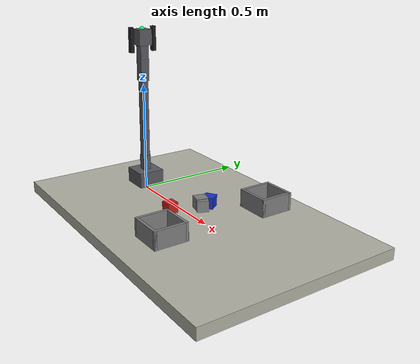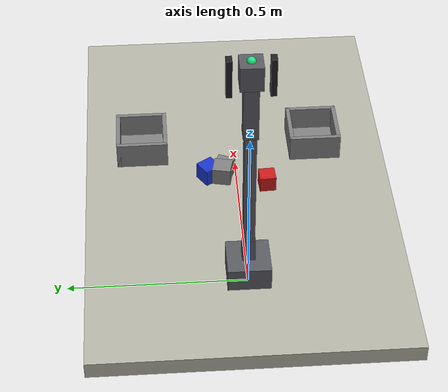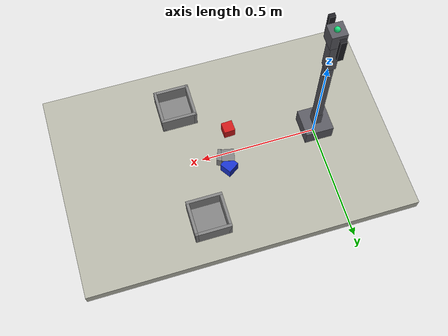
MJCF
<mujoco model="Autonomous reference tabletop arm scene_task_req_a_tabletop_robot_arm_that_sorts_red_and_blue_blo_holdout_001">
  <compiler angle="radian" coordinate="local" />
  <option timestep="0.002" gravity="0 0 -9.81" />
  <!-- scene_set_id=scenes_task_req_a_tabletop_robot_arm_that_sorts_red_and_blue_blo_holdout scene_id=scene_task_req_a_tabletop_robot_arm_that_sorts_red_and_blue_blo_holdout_001 -->
  <default>
    <joint damping="0.8" armature="0.01" />
    <geom friction="1 0.1 0.01" />
  </default>
  <asset>
    <material name="mat_red" rgba="0.8 0.1 0.1 1" />
    <material name="mat_blue" rgba="0.1 0.2 0.8 1" />
    <material name="mat_gray" rgba="0.5 0.5 0.5 1" />
    <material name="mat_link" rgba="0.35 0.35 0.38 1" />
  </asset>
  <worldbody>
    <light name="key" pos="0 0 2" dir="0 0 -1" />
    <geom name="table" type="box" size="0.7 0.45 0.025" pos="0.4 0 0" rgba="0.7 0.7 0.65 1" />
    <body name="base_link" pos="0.0 0.0 0.025">
      <geom name="base_link_geom" type="box" size="0.06 0.06 0.035" pos="0 0 0.035" mass="0.45" material="mat_link" />
      <body name="upper_link" pos="0.0 0.0 0.07">
        <joint name="base_yaw" type="hinge" axis="0.0 0.0 1.0" pos="0 0 0" limited="true" range="-3.14 3.14" />
        <geom name="upper_link_geom" type="box" size="0.018 0.018 0.035" pos="0 0 0.035" mass="0.22" material="mat_link" />
        <body name="forearm_link" pos="0.0 0.0 0.07">
          <joint name="shoulder_pitch" type="hinge" axis="0.0 1.0 0.0" pos="0 0 0" limited="true" range="-1.57 1.57" />
          <geom name="forearm_link_geom" type="box" size="0.016 0.016 0.1785" pos="0 0 0.1785" mass="0.18" material="mat_link" />
          <body name="wrist_link" pos="0.0 0.0 0.357">
            <joint name="elbow_pitch" type="hinge" axis="0.0 1.0 0.0" pos="0 0 0" limited="true" range="-1.57 1.57" />
            <geom name="wrist_link_geom" type="box" size="0.02 0.02 0.08" pos="0 0 0.08" mass="0.035" material="mat_link" />
            <camera name="wrist_rgbd_camera" pos="0.03 0.0 0.04" xyaxes="0 -1 0 0 0 1" mode="fixed" user="0.0 0.0 0.0" />
            <body name="gripper_link" pos="0.0 0.0 0.16">
              <geom name="gripper_link_geom" type="box" size="0.03 0.03 0.035" pos="0 0 0.035" mass="0.04" material="mat_link" />
              <site name="ee_site" pos="0 0 0.07" size="0.012" rgba="0.1 0.9 0.5 1" />
              <site name="grasp_site" pos="0 0 0.015" size="0.01" rgba="1 0.7 0.1 1" />
              <body name="left_gripper_finger" pos="0 0.055 0.07">
                <joint name="left_gripper_slide" type="slide" axis="0 -1 0" limited="true" range="0 0.04" damping="2.0" />
                <geom name="left_gripper_pad" type="box" size="0.012 0.008 0.055" pos="0 0 -0.045" mass="0.025" rgba="0.12 0.12 0.14 1" friction="1.5 0.1 0.01" />
              </body>
              <body name="right_gripper_finger" pos="0 -0.055 0.07">
                <joint name="right_gripper_slide" type="slide" axis="0 1 0" limited="true" range="0 0.04" damping="2.0" />
                <geom name="right_gripper_pad" type="box" size="0.012 0.008 0.055" pos="0 0 -0.045" mass="0.025" rgba="0.12 0.12 0.14 1" friction="1.5 0.1 0.01" />
              </body>
            </body>
          </body>
        </body>
      </body>
    </body>
    <body name="obj_red_block" pos="0.36 -0.085 0.0498" euler="0 0 -3.088">
      <freejoint name="free_red_block" />
      <geom name="red_block" type="box" size="0.0238 0.0238 0.0238" mass="0.0409" friction="1.178 0.1 0.01" material="mat_red" />
    </body>
    <body name="obj_blue_block" pos="0.4061 0.085 0.0519" euler="0 0 0.5837">
      <freejoint name="free_blue_block" />
      <geom name="blue_block" type="box" size="0.0259 0.0259 0.0259" mass="0.042" friction="0.878 0.1 0.01" material="mat_blue" />
    </body>
    <geom name="red_bin" type="box" size="0.07 0.07 0.004" pos="0.55 -0.2403 0.029" material="mat_gray" />
    <geom name="red_bin_wall_px" type="box" size="0.006 0.07600000000000001 0.04" pos="0.62 -0.2403 0.065" material="mat_gray" />
    <geom name="red_bin_wall_nx" type="box" size="0.006 0.07600000000000001 0.04" pos="0.48 -0.2403 0.065" material="mat_gray" />
    <geom name="red_bin_wall_py" type="box" size="0.07600000000000001 0.006 0.04" pos="0.55 -0.1703 0.065" material="mat_gray" />
    <geom name="red_bin_wall_ny" type="box" size="0.07600000000000001 0.006 0.04" pos="0.55 -0.3103 0.065" material="mat_gray" />
    <geom name="blue_bin" type="box" size="0.07 0.07 0.004" pos="0.55 0.2799 0.029" material="mat_gray" />
    <geom name="blue_bin_wall_px" type="box" size="0.006 0.07600000000000001 0.04" pos="0.62 0.2799 0.065" material="mat_gray" />
    <geom name="blue_bin_wall_nx" type="box" size="0.006 0.07600000000000001 0.04" pos="0.48 0.2799 0.065" material="mat_gray" />
    <geom name="blue_bin_wall_py" type="box" size="0.07600000000000001 0.006 0.04" pos="0.55 0.3499 0.065" material="mat_gray" />
    <geom name="blue_bin_wall_ny" type="box" size="0.07600000000000001 0.006 0.04" pos="0.55 0.2099 0.065" material="mat_gray" />
    <body name="obj_distractor_1_0" pos="0.4182 0.0387 0.0517" euler="0 0 -0.4027">
      <freejoint name="free_distractor_1_0" />
      <geom name="distractor_1_0" type="box" size="0.0257 0.0257 0.0257" mass="0.0594" friction="1.213 0.1 0.01" material="mat_gray" />
    </body>
    <body name="obj_distractor_1_1" pos="0.4001 0.0443 0.0529" euler="0 0 -0.2066">
      <freejoint name="free_distractor_1_1" />
      <geom name="distractor_1_1" type="box" size="0.0269 0.0269 0.0269" mass="0.0682" friction="0.836 0.1 0.01" material="mat_gray" />
    </body>
  </worldbody>
  <actuator>
    <motor name="base_yaw_motor" joint="base_yaw" gear="1" forcerange="-12.0 12.0" />
    <motor name="shoulder_pitch_motor" joint="shoulder_pitch" gear="1" forcerange="-12.0 12.0" />
    <motor name="elbow_pitch_motor" joint="elbow_pitch" gear="1" forcerange="-12.0 12.0" />
    <motor name="left_gripper_slide_motor" joint="left_gripper_slide" gear="1" forcerange="-25 25" />
    <motor name="right_gripper_slide_motor" joint="right_gripper_slide" gear="1" forcerange="-25 25" />
  </actuator>
  <sensor>
    <framepos name="wrist_rgbd_camera_pose" objtype="camera" objname="wrist_rgbd_camera" />
    <framequat name="wrist_rgbd_camera_orientation" objtype="camera" objname="wrist_rgbd_camera" />
  </sensor>
</mujoco>
